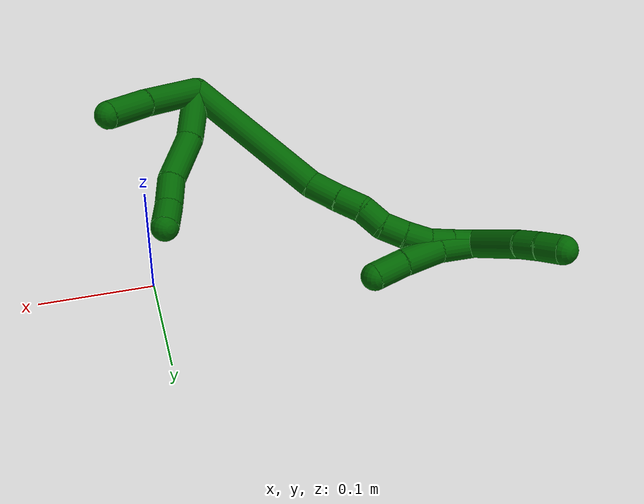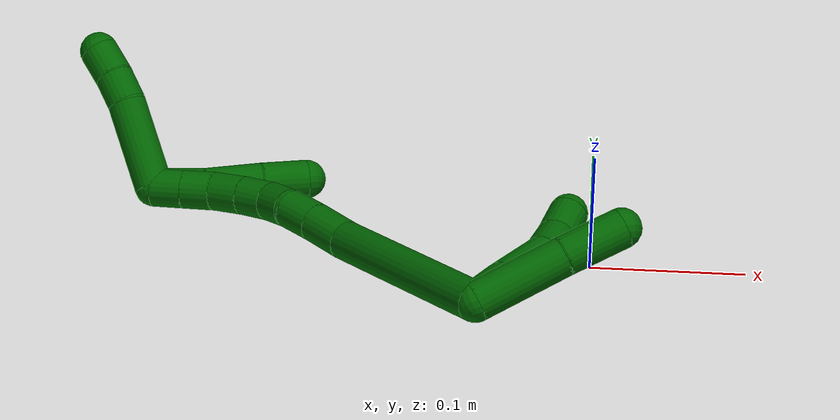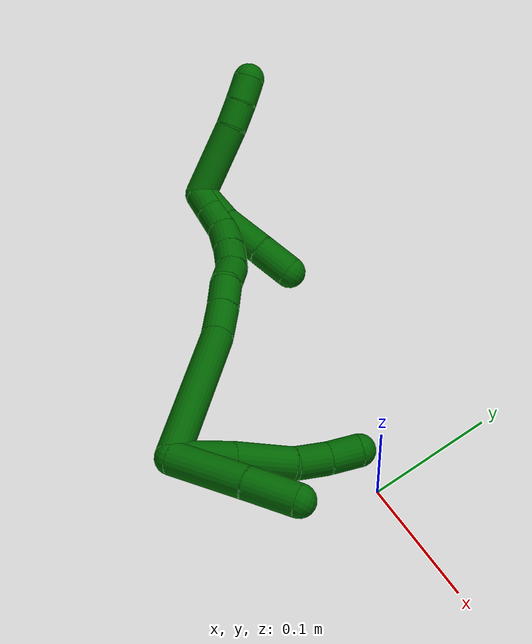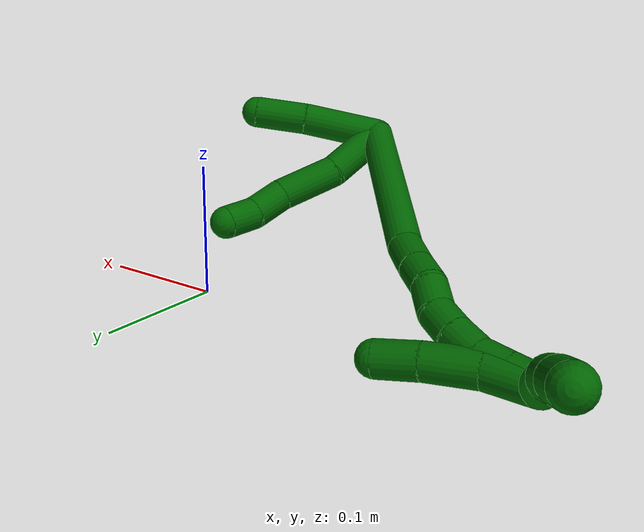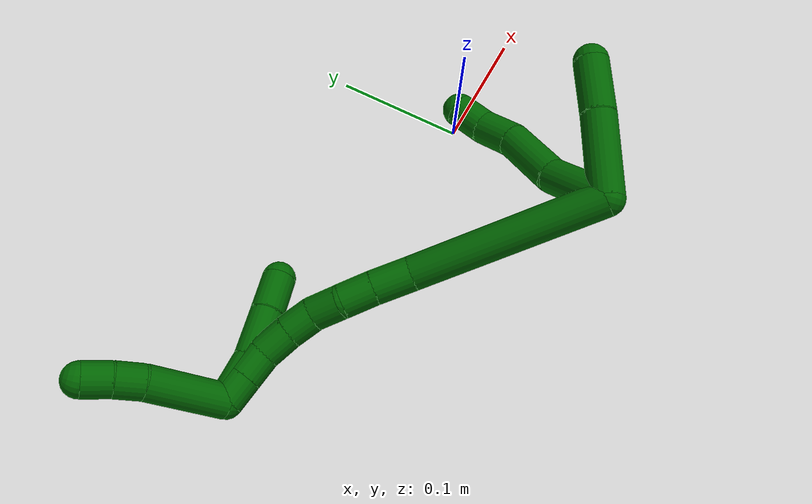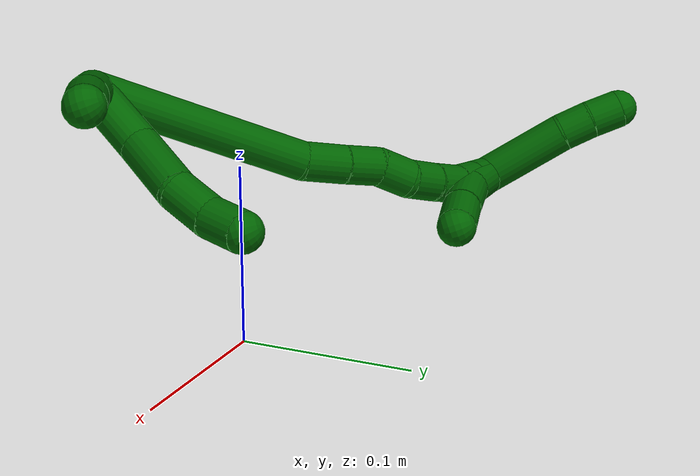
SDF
<sdf version="1.7">
 <world name="default">
  <model name="6">
   <static>0</static>
   <link name="6">
    <collision name="collision-cylinder-e_1_2_8">
     <pose>0.017528 0.01413 0.010298 -0.94099 0.786639 -0.415965</pose>
     <geometry><cylinder><radius>0.0125</radius><length>0.049516</length></cylinder></geometry>
     <surface>
      <friction><ode><mu>1.16</mu><mu2>1.16</mu2><slip1>0</slip1><slip2>0</slip2></ode></friction>
      <contact><ode><kp>1e+06</kp><kd>1</kd><max_vel>0</max_vel><min_depth>0.001</min_depth></ode></contact>
     </surface>
    </collision>
    <visual name="visual-cylinder-e_1_2_8">
     <pose>0.017528 0.01413 0.010298 -0.94099 0.786639 -0.415965</pose>
     <geometry><cylinder><radius>0.0125</radius><length>0.049516</length></cylinder></geometry>
     <material><ambient>0 0.392157 0.003922 1</ambient></material>
    </visual>
    <collision name="collision-cylinder-e_2_8_9">
     <pose>0.055243 0.036306 0.030016 -0.706912 1.0204 -0.407222</pose>
     <geometry><cylinder><radius>0.0125</radius><length>0.047367</length></cylinder></geometry>
     <surface>
      <friction><ode><mu>1.16</mu><mu2>1.16</mu2><slip1>0</slip1><slip2>0</slip2></ode></friction>
      <contact><ode><kp>1e+06</kp><kd>1</kd><max_vel>0</max_vel><min_depth>0.001</min_depth></ode></contact>
     </surface>
    </collision>
    <visual name="visual-cylinder-e_2_8_9">
     <pose>0.055243 0.036306 0.030016 -0.706912 1.0204 -0.407222</pose>
     <geometry><cylinder><radius>0.0125</radius><length>0.047367</length></cylinder></geometry>
     <material><ambient>0 0.392157 0.003922 1</ambient></material>
    </visual>
    <collision name="collision-cylinder-e_3_9_10">
     <pose>0.084985 0.05113 0.047227 -0.715904 0.746595 -0.290945</pose>
     <geometry><cylinder><radius>0.0125</radius><length>0.028144</length></cylinder></geometry>
     <surface>
      <friction><ode><mu>1.16</mu><mu2>1.16</mu2><slip1>0</slip1><slip2>0</slip2></ode></friction>
      <contact><ode><kp>1e+06</kp><kd>1</kd><max_vel>0</max_vel><min_depth>0.001</min_depth></ode></contact>
     </surface>
    </collision>
    <visual name="visual-cylinder-e_3_9_10">
     <pose>0.084985 0.05113 0.047227 -0.715904 0.746595 -0.290945</pose>
     <geometry><cylinder><radius>0.0125</radius><length>0.028144</length></cylinder></geometry>
     <material><ambient>0 0.392157 0.003922 1</ambient></material>
    </visual>
    <collision name="collision-cylinder-e_4_10_6">
     <pose>0.103156 0.061098 0.063479 -0.360558 0.761278 -0.145605</pose>
     <geometry><cylinder><radius>0.0125</radius><length>0.024973</length></cylinder></geometry>
     <surface>
      <friction><ode><mu>1.16</mu><mu2>1.16</mu2><slip1>0</slip1><slip2>0</slip2></ode></friction>
      <contact><ode><kp>1e+06</kp><kd>1</kd><max_vel>0</max_vel><min_depth>0.001</min_depth></ode></contact>
     </surface>
    </collision>
    <visual name="visual-cylinder-e_4_10_6">
     <pose>0.103156 0.061098 0.063479 -0.360558 0.761278 -0.145605</pose>
     <geometry><cylinder><radius>0.0125</radius><length>0.024973</length></cylinder></geometry>
     <material><ambient>0 0.392157 0.003922 1</ambient></material>
    </visual>
    <collision name="collision-cylinder-e_1_2_11">
     <pose>0.027611 -0.009636 0.005438 1.05697 1.18966 0.752451</pose>
     <geometry><cylinder><radius>0.0125</radius><length>0.059492</length></cylinder></geometry>
     <surface>
      <friction><ode><mu>1.16</mu><mu2>1.16</mu2><slip1>0</slip1><slip2>0</slip2></ode></friction>
      <contact><ode><kp>1e+06</kp><kd>1</kd><max_vel>0</max_vel><min_depth>0.001</min_depth></ode></contact>
     </surface>
    </collision>
    <visual name="visual-cylinder-e_1_2_11">
     <pose>0.027611 -0.009636 0.005438 1.05697 1.18966 0.752451</pose>
     <geometry><cylinder><radius>0.0125</radius><length>0.059492</length></cylinder></geometry>
     <material><ambient>0 0.392157 0.003922 1</ambient></material>
    </visual>
    <collision name="collision-cylinder-e_2_11_5">
     <pose>0.074485 -0.024408 0.014459 0.961842 1.25647 0.724598</pose>
     <geometry><cylinder><radius>0.0125</radius><length>0.040508</length></cylinder></geometry>
     <surface>
      <friction><ode><mu>1.16</mu><mu2>1.16</mu2><slip1>0</slip1><slip2>0</slip2></ode></friction>
      <contact><ode><kp>1e+06</kp><kd>1</kd><max_vel>0</max_vel><min_depth>0.001</min_depth></ode></contact>
     </surface>
    </collision>
    <visual name="visual-cylinder-e_2_11_5">
     <pose>0.074485 -0.024408 0.014459 0.961842 1.25647 0.724598</pose>
     <geometry><cylinder><radius>0.0125</radius><length>0.040508</length></cylinder></geometry>
     <material><ambient>0 0.392157 0.003922 1</ambient></material>
    </visual>
    <collision name="collision-cylinder-e_1_2_12">
     <pose>-0.011569 0.049862 0.047185 -0.812973 -0.166953 0.072003</pose>
     <geometry><cylinder><radius>0.0125</radius><length>0.139233</length></cylinder></geometry>
     <surface>
      <friction><ode><mu>1.16</mu><mu2>1.16</mu2><slip1>0</slip1><slip2>0</slip2></ode></friction>
      <contact><ode><kp>1e+06</kp><kd>1</kd><max_vel>0</max_vel><min_depth>0.001</min_depth></ode></contact>
     </surface>
    </collision>
    <visual name="visual-cylinder-e_1_2_12">
     <pose>-0.011569 0.049862 0.047185 -0.812973 -0.166953 0.072003</pose>
     <geometry><cylinder><radius>0.0125</radius><length>0.139233</length></cylinder></geometry>
     <material><ambient>0 0.392157 0.003922 1</ambient></material>
    </visual>
    <collision name="collision-cylinder-e_2_12_13">
     <pose>-0.027416 0.107768 0.105492 -0.626203 -0.302137 0.098488</pose>
     <geometry><cylinder><radius>0.0125</radius><length>0.028754</length></cylinder></geometry>
     <surface>
      <friction><ode><mu>1.16</mu><mu2>1.16</mu2><slip1>0</slip1><slip2>0</slip2></ode></friction>
      <contact><ode><kp>1e+06</kp><kd>1</kd><max_vel>0</max_vel><min_depth>0.001</min_depth></ode></contact>
     </surface>
    </collision>
    <visual name="visual-cylinder-e_2_12_13">
     <pose>-0.027416 0.107768 0.105492 -0.626203 -0.302137 0.098488</pose>
     <geometry><cylinder><radius>0.0125</radius><length>0.028754</length></cylinder></geometry>
     <material><ambient>0 0.392157 0.003922 1</ambient></material>
    </visual>
    <collision name="collision-cylinder-e_3_13_14">
     <pose>-0.035852 0.122411 0.125684 -0.628894 -0.355005 0.116557</pose>
     <geometry><cylinder><radius>0.0125</radius><length>0.023925</length></cylinder></geometry>
     <surface>
      <friction><ode><mu>1.16</mu><mu2>1.16</mu2><slip1>0</slip1><slip2>0</slip2></ode></friction>
      <contact><ode><kp>1e+06</kp><kd>1</kd><max_vel>0</max_vel><min_depth>0.001</min_depth></ode></contact>
     </surface>
    </collision>
    <visual name="visual-cylinder-e_3_13_14">
     <pose>-0.035852 0.122411 0.125684 -0.628894 -0.355005 0.116557</pose>
     <geometry><cylinder><radius>0.0125</radius><length>0.023925</length></cylinder></geometry>
     <material><ambient>0 0.392157 0.003922 1</ambient></material>
    </visual>
    <collision name="collision-cylinder-e_4_14_15">
     <pose>-0.041914 0.137564 0.141916 -0.873881 -0.169066 0.079109</pose>
     <geometry><cylinder><radius>0.0125</radius><length>0.022637</length></cylinder></geometry>
     <surface>
      <friction><ode><mu>1.16</mu><mu2>1.16</mu2><slip1>0</slip1><slip2>0</slip2></ode></friction>
      <contact><ode><kp>1e+06</kp><kd>1</kd><max_vel>0</max_vel><min_depth>0.001</min_depth></ode></contact>
     </surface>
    </collision>
    <visual name="visual-cylinder-e_4_14_15">
     <pose>-0.041914 0.137564 0.141916 -0.873881 -0.169066 0.079109</pose>
     <geometry><cylinder><radius>0.0125</radius><length>0.022637</length></cylinder></geometry>
     <material><ambient>0 0.392157 0.003922 1</ambient></material>
    </visual>
    <collision name="collision-cylinder-e_5_15_16">
     <pose>-0.049047 0.152919 0.155545 -0.810332 -0.508286 0.221905</pose>
     <geometry><cylinder><radius>0.0125</radius><length>0.021484</length></cylinder></geometry>
     <surface>
      <friction><ode><mu>1.16</mu><mu2>1.16</mu2><slip1>0</slip1><slip2>0</slip2></ode></friction>
      <contact><ode><kp>1e+06</kp><kd>1</kd><max_vel>0</max_vel><min_depth>0.001</min_depth></ode></contact>
     </surface>
    </collision>
    <visual name="visual-cylinder-e_5_15_16">
     <pose>-0.049047 0.152919 0.155545 -0.810332 -0.508286 0.221905</pose>
     <geometry><cylinder><radius>0.0125</radius><length>0.021484</length></cylinder></geometry>
     <material><ambient>0 0.392157 0.003922 1</ambient></material>
    </visual>
    <collision name="collision-cylinder-e_6_16_17">
     <pose>-0.060836 0.166648 0.168344 -0.830605 -0.61003 0.275894</pose>
     <geometry><cylinder><radius>0.0125</radius><length>0.022904</length></cylinder></geometry>
     <surface>
      <friction><ode><mu>1.16</mu><mu2>1.16</mu2><slip1>0</slip1><slip2>0</slip2></ode></friction>
      <contact><ode><kp>1e+06</kp><kd>1</kd><max_vel>0</max_vel><min_depth>0.001</min_depth></ode></contact>
     </surface>
    </collision>
    <visual name="visual-cylinder-e_6_16_17">
     <pose>-0.060836 0.166648 0.168344 -0.830605 -0.61003 0.275894</pose>
     <geometry><cylinder><radius>0.0125</radius><length>0.022904</length></cylinder></geometry>
     <material><ambient>0 0.392157 0.003922 1</ambient></material>
    </visual>
    <collision name="collision-cylinder-e_7_17_18">
     <pose>-0.07546 0.178241 0.179163 -0.804341 -0.894457 0.402511</pose>
     <geometry><cylinder><radius>0.0125</radius><length>0.020678</length></cylinder></geometry>
     <surface>
      <friction><ode><mu>1.16</mu><mu2>1.16</mu2><slip1>0</slip1><slip2>0</slip2></ode></friction>
      <contact><ode><kp>1e+06</kp><kd>1</kd><max_vel>0</max_vel><min_depth>0.001</min_depth></ode></contact>
     </surface>
    </collision>
    <visual name="visual-cylinder-e_7_17_18">
     <pose>-0.07546 0.178241 0.179163 -0.804341 -0.894457 0.402511</pose>
     <geometry><cylinder><radius>0.0125</radius><length>0.020678</length></cylinder></geometry>
     <material><ambient>0 0.392157 0.003922 1</ambient></material>
    </visual>
    <collision name="collision-cylinder-e_8_18_1">
     <pose>-0.091525 0.187414 0.188067 -0.796087 -0.902884 0.402223</pose>
     <geometry><cylinder><radius>0.0125</radius><length>0.020384</length></cylinder></geometry>
     <surface>
      <friction><ode><mu>1.16</mu><mu2>1.16</mu2><slip1>0</slip1><slip2>0</slip2></ode></friction>
      <contact><ode><kp>1e+06</kp><kd>1</kd><max_vel>0</max_vel><min_depth>0.001</min_depth></ode></contact>
     </surface>
    </collision>
    <visual name="visual-cylinder-e_8_18_1">
     <pose>-0.091525 0.187414 0.188067 -0.796087 -0.902884 0.402223</pose>
     <geometry><cylinder><radius>0.0125</radius><length>0.020384</length></cylinder></geometry>
     <material><ambient>0 0.392157 0.003922 1</ambient></material>
    </visual>
    <collision name="collision-cylinder-e_1_1_19">
     <pose>-0.084768 0.186368 0.186988 2.35055 1.08385 1.92889</pose>
     <geometry><cylinder><radius>0.0125</radius><length>0.033399</length></cylinder></geometry>
     <surface>
      <friction><ode><mu>1.16</mu><mu2>1.16</mu2><slip1>0</slip1><slip2>0</slip2></ode></friction>
      <contact><ode><kp>1e+06</kp><kd>1</kd><max_vel>0</max_vel><min_depth>0.001</min_depth></ode></contact>
     </surface>
    </collision>
    <visual name="visual-cylinder-e_1_1_19">
     <pose>-0.084768 0.186368 0.186988 2.35055 1.08385 1.92889</pose>
     <geometry><cylinder><radius>0.0125</radius><length>0.033399</length></cylinder></geometry>
     <material><ambient>0 0.392157 0.003922 1</ambient></material>
    </visual>
    <collision name="collision-cylinder-e_2_19_20">
     <pose>-0.052082 0.177082 0.178511 2.24539 1.31043 2.0236</pose>
     <geometry><cylinder><radius>0.0125</radius><length>0.037104</length></cylinder></geometry>
     <surface>
      <friction><ode><mu>1.16</mu><mu2>1.16</mu2><slip1>0</slip1><slip2>0</slip2></ode></friction>
      <contact><ode><kp>1e+06</kp><kd>1</kd><max_vel>0</max_vel><min_depth>0.001</min_depth></ode></contact>
     </surface>
    </collision>
    <visual name="visual-cylinder-e_2_19_20">
     <pose>-0.052082 0.177082 0.178511 2.24539 1.31043 2.0236</pose>
     <geometry><cylinder><radius>0.0125</radius><length>0.037104</length></cylinder></geometry>
     <material><ambient>0 0.392157 0.003922 1</ambient></material>
    </visual>
    <collision name="collision-cylinder-e_3_20_4">
     <pose>-0.019717 0.171513 0.173148 2.48398 1.36542 2.34703</pose>
     <geometry><cylinder><radius>0.0125</radius><length>0.029496</length></cylinder></geometry>
     <surface>
      <friction><ode><mu>1.16</mu><mu2>1.16</mu2><slip1>0</slip1><slip2>0</slip2></ode></friction>
      <contact><ode><kp>1e+06</kp><kd>1</kd><max_vel>0</max_vel><min_depth>0.001</min_depth></ode></contact>
     </surface>
    </collision>
    <visual name="visual-cylinder-e_3_20_4">
     <pose>-0.019717 0.171513 0.173148 2.48398 1.36542 2.34703</pose>
     <geometry><cylinder><radius>0.0125</radius><length>0.029496</length></cylinder></geometry>
     <material><ambient>0 0.392157 0.003922 1</ambient></material>
    </visual>
    <collision name="collision-cylinder-e_1_1_21">
     <pose>-0.101631 0.186795 0.2213 0.176142 -0.071775 -0.00634</pose>
     <geometry><cylinder><radius>0.0125</radius><length>0.058691</length></cylinder></geometry>
     <surface>
      <friction><ode><mu>1.16</mu><mu2>1.16</mu2><slip1>0</slip1><slip2>0</slip2></ode></friction>
      <contact><ode><kp>1e+06</kp><kd>1</kd><max_vel>0</max_vel><min_depth>0.001</min_depth></ode></contact>
     </surface>
    </collision>
    <visual name="visual-cylinder-e_1_1_21">
     <pose>-0.101631 0.186795 0.2213 0.176142 -0.071775 -0.00634</pose>
     <geometry><cylinder><radius>0.0125</radius><length>0.058691</length></cylinder></geometry>
     <material><ambient>0 0.392157 0.003922 1</ambient></material>
    </visual>
    <collision name="collision-cylinder-e_2_21_22">
     <pose>-0.105292 0.181324 0.260278 0.033648 -0.151872 -0.00256</pose>
     <geometry><cylinder><radius>0.0125</radius><length>0.020571</length></cylinder></geometry>
     <surface>
      <friction><ode><mu>1.16</mu><mu2>1.16</mu2><slip1>0</slip1><slip2>0</slip2></ode></friction>
      <contact><ode><kp>1e+06</kp><kd>1</kd><max_vel>0</max_vel><min_depth>0.001</min_depth></ode></contact>
     </surface>
    </collision>
    <visual name="visual-cylinder-e_2_21_22">
     <pose>-0.105292 0.181324 0.260278 0.033648 -0.151872 -0.00256</pose>
     <geometry><cylinder><radius>0.0125</radius><length>0.020571</length></cylinder></geometry>
     <material><ambient>0 0.392157 0.003922 1</ambient></material>
    </visual>
    <collision name="collision-cylinder-e_3_22_3">
     <pose>-0.108948 0.181639 0.280572 -0.064696 -0.204002 0.006624</pose>
     <geometry><cylinder><radius>0.0125</radius><length>0.020738</length></cylinder></geometry>
     <surface>
      <friction><ode><mu>1.16</mu><mu2>1.16</mu2><slip1>0</slip1><slip2>0</slip2></ode></friction>
      <contact><ode><kp>1e+06</kp><kd>1</kd><max_vel>0</max_vel><min_depth>0.001</min_depth></ode></contact>
     </surface>
    </collision>
    <visual name="visual-cylinder-e_3_22_3">
     <pose>-0.108948 0.181639 0.280572 -0.064696 -0.204002 0.006624</pose>
     <geometry><cylinder><radius>0.0125</radius><length>0.020738</length></cylinder></geometry>
     <material><ambient>0 0.392157 0.003922 1</ambient></material>
    </visual>
    <collision name="collision-sphere-3">
     <pose>-0.111049 0.182295 0.290705 0 -0 0</pose>
     <geometry><sphere><radius>0.0125</radius></sphere></geometry>
     <surface>
      <friction><ode><mu>1.16</mu><mu2>1.16</mu2><slip1>0</slip1><slip2>0</slip2></ode></friction>
      <contact><ode><kp>1e+06</kp><kd>1</kd><max_vel>0</max_vel><min_depth>0.001</min_depth></ode></contact>
     </surface>
    </collision>
    <visual name="visual-sphere-3">
     <pose>-0.111049 0.182295 0.290705 0 -0 0</pose>
     <geometry><sphere><radius>0.0125</radius></sphere></geometry>
     <material><ambient>0 0.392157 0.003922 1</ambient></material>
    </visual>
    <collision name="collision-sphere-22">
     <pose>-0.106848 0.180982 0.270439 0 -0 0</pose>
     <geometry><sphere><radius>0.0125</radius></sphere></geometry>
     <surface>
      <friction><ode><mu>1.16</mu><mu2>1.16</mu2><slip1>0</slip1><slip2>0</slip2></ode></friction>
      <contact><ode><kp>1e+06</kp><kd>1</kd><max_vel>0</max_vel><min_depth>0.001</min_depth></ode></contact>
     </surface>
    </collision>
    <visual name="visual-sphere-22">
     <pose>-0.106848 0.180982 0.270439 0 -0 0</pose>
     <geometry><sphere><radius>0.0125</radius></sphere></geometry>
     <material><ambient>0 0.392157 0.003922 1</ambient></material>
    </visual>
    <collision name="collision-sphere-21">
     <pose>-0.103736 0.181666 0.250117 0 -0 0</pose>
     <geometry><sphere><radius>0.0125</radius></sphere></geometry>
     <surface>
      <friction><ode><mu>1.16</mu><mu2>1.16</mu2><slip1>0</slip1><slip2>0</slip2></ode></friction>
      <contact><ode><kp>1e+06</kp><kd>1</kd><max_vel>0</max_vel><min_depth>0.001</min_depth></ode></contact>
     </surface>
    </collision>
    <visual name="visual-sphere-21">
     <pose>-0.103736 0.181666 0.250117 0 -0 0</pose>
     <geometry><sphere><radius>0.0125</radius></sphere></geometry>
     <material><ambient>0 0.392157 0.003922 1</ambient></material>
    </visual>
    <collision name="collision-sphere-4">
     <pose>-0.005279 0.169675 0.170767 0 -0 0</pose>
     <geometry><sphere><radius>0.0125</radius></sphere></geometry>
     <surface>
      <friction><ode><mu>1.16</mu><mu2>1.16</mu2><slip1>0</slip1><slip2>0</slip2></ode></friction>
      <contact><ode><kp>1e+06</kp><kd>1</kd><max_vel>0</max_vel><min_depth>0.001</min_depth></ode></contact>
     </surface>
    </collision>
    <visual name="visual-sphere-4">
     <pose>-0.005279 0.169675 0.170767 0 -0 0</pose>
     <geometry><sphere><radius>0.0125</radius></sphere></geometry>
     <material><ambient>0 0.392157 0.003922 1</ambient></material>
    </visual>
    <collision name="collision-sphere-20">
     <pose>-0.034156 0.173352 0.175528 0 -0 0</pose>
     <geometry><sphere><radius>0.0125</radius></sphere></geometry>
     <surface>
      <friction><ode><mu>1.16</mu><mu2>1.16</mu2><slip1>0</slip1><slip2>0</slip2></ode></friction>
      <contact><ode><kp>1e+06</kp><kd>1</kd><max_vel>0</max_vel><min_depth>0.001</min_depth></ode></contact>
     </surface>
    </collision>
    <visual name="visual-sphere-20">
     <pose>-0.034156 0.173352 0.175528 0 -0 0</pose>
     <geometry><sphere><radius>0.0125</radius></sphere></geometry>
     <material><ambient>0 0.392157 0.003922 1</ambient></material>
    </visual>
    <collision name="collision-sphere-11">
     <pose>0.055223 -0.019272 0.010877 0 -0 0</pose>
     <geometry><sphere><radius>0.0125</radius></sphere></geometry>
     <surface>
      <friction><ode><mu>1.16</mu><mu2>1.16</mu2><slip1>0</slip1><slip2>0</slip2></ode></friction>
      <contact><ode><kp>1e+06</kp><kd>1</kd><max_vel>0</max_vel><min_depth>0.001</min_depth></ode></contact>
     </surface>
    </collision>
    <visual name="visual-sphere-11">
     <pose>0.055223 -0.019272 0.010877 0 -0 0</pose>
     <geometry><sphere><radius>0.0125</radius></sphere></geometry>
     <material><ambient>0 0.392157 0.003922 1</ambient></material>
    </visual>
    <collision name="collision-sphere-6">
     <pose>0.11177 0.064287 0.071937 0 -0 0</pose>
     <geometry><sphere><radius>0.0125</radius></sphere></geometry>
     <surface>
      <friction><ode><mu>1.16</mu><mu2>1.16</mu2><slip1>0</slip1><slip2>0</slip2></ode></friction>
      <contact><ode><kp>1e+06</kp><kd>1</kd><max_vel>0</max_vel><min_depth>0.001</min_depth></ode></contact>
     </surface>
    </collision>
    <visual name="visual-sphere-6">
     <pose>0.11177 0.064287 0.071937 0 -0 0</pose>
     <geometry><sphere><radius>0.0125</radius></sphere></geometry>
     <material><ambient>0 0.392157 0.003922 1</ambient></material>
    </visual>
    <collision name="collision-sphere-10">
     <pose>0.094542 0.057909 0.055021 0 -0 0</pose>
     <geometry><sphere><radius>0.0125</radius></sphere></geometry>
     <surface>
      <friction><ode><mu>1.16</mu><mu2>1.16</mu2><slip1>0</slip1><slip2>0</slip2></ode></friction>
      <contact><ode><kp>1e+06</kp><kd>1</kd><max_vel>0</max_vel><min_depth>0.001</min_depth></ode></contact>
     </surface>
    </collision>
    <visual name="visual-sphere-10">
     <pose>0.094542 0.057909 0.055021 0 -0 0</pose>
     <geometry><sphere><radius>0.0125</radius></sphere></geometry>
     <material><ambient>0 0.392157 0.003922 1</ambient></material>
    </visual>
    <collision name="collision-sphere-9">
     <pose>0.075428 0.044351 0.039434 0 -0 0</pose>
     <geometry><sphere><radius>0.0125</radius></sphere></geometry>
     <surface>
      <friction><ode><mu>1.16</mu><mu2>1.16</mu2><slip1>0</slip1><slip2>0</slip2></ode></friction>
      <contact><ode><kp>1e+06</kp><kd>1</kd><max_vel>0</max_vel><min_depth>0.001</min_depth></ode></contact>
     </surface>
    </collision>
    <visual name="visual-sphere-9">
     <pose>0.075428 0.044351 0.039434 0 -0 0</pose>
     <geometry><sphere><radius>0.0125</radius></sphere></geometry>
     <material><ambient>0 0.392157 0.003922 1</ambient></material>
    </visual>
    <collision name="collision-sphere-2">
     <geometry><sphere><radius>0.0125</radius></sphere></geometry>
     <surface>
      <friction><ode><mu>1.16</mu><mu2>1.16</mu2><slip1>0</slip1><slip2>0</slip2></ode></friction>
      <contact><ode><kp>1e+06</kp><kd>1</kd><max_vel>0</max_vel><min_depth>0.001</min_depth></ode></contact>
     </surface>
    </collision>
    <visual name="visual-sphere-2">
     <geometry><sphere><radius>0.0125</radius></sphere></geometry>
     <material><ambient>0 0.392157 0.003922 1</ambient></material>
    </visual>
    <collision name="collision-sphere-19">
     <pose>-0.070009 0.180811 0.181494 0 -0 0</pose>
     <geometry><sphere><radius>0.0125</radius></sphere></geometry>
     <surface>
      <friction><ode><mu>1.16</mu><mu2>1.16</mu2><slip1>0</slip1><slip2>0</slip2></ode></friction>
      <contact><ode><kp>1e+06</kp><kd>1</kd><max_vel>0</max_vel><min_depth>0.001</min_depth></ode></contact>
     </surface>
    </collision>
    <visual name="visual-sphere-19">
     <pose>-0.070009 0.180811 0.181494 0 -0 0</pose>
     <geometry><sphere><radius>0.0125</radius></sphere></geometry>
     <material><ambient>0 0.392157 0.003922 1</ambient></material>
    </visual>
    <collision name="collision-sphere-8">
     <pose>0.035057 0.028261 0.020597 0 -0 0</pose>
     <geometry><sphere><radius>0.0125</radius></sphere></geometry>
     <surface>
      <friction><ode><mu>1.16</mu><mu2>1.16</mu2><slip1>0</slip1><slip2>0</slip2></ode></friction>
      <contact><ode><kp>1e+06</kp><kd>1</kd><max_vel>0</max_vel><min_depth>0.001</min_depth></ode></contact>
     </surface>
    </collision>
    <visual name="visual-sphere-8">
     <pose>0.035057 0.028261 0.020597 0 -0 0</pose>
     <geometry><sphere><radius>0.0125</radius></sphere></geometry>
     <material><ambient>0 0.392157 0.003922 1</ambient></material>
    </visual>
    <collision name="collision-sphere-5">
     <pose>0.093746 -0.029545 0.018041 0 -0 0</pose>
     <geometry><sphere><radius>0.0125</radius></sphere></geometry>
     <surface>
      <friction><ode><mu>1.16</mu><mu2>1.16</mu2><slip1>0</slip1><slip2>0</slip2></ode></friction>
      <contact><ode><kp>1e+06</kp><kd>1</kd><max_vel>0</max_vel><min_depth>0.001</min_depth></ode></contact>
     </surface>
    </collision>
    <visual name="visual-sphere-5">
     <pose>0.093746 -0.029545 0.018041 0 -0 0</pose>
     <geometry><sphere><radius>0.0125</radius></sphere></geometry>
     <material><ambient>0 0.392157 0.003922 1</ambient></material>
    </visual>
    <collision name="collision-sphere-12">
     <pose>-0.023138 0.099724 0.09437 0 -0 0</pose>
     <geometry><sphere><radius>0.0125</radius></sphere></geometry>
     <surface>
      <friction><ode><mu>1.16</mu><mu2>1.16</mu2><slip1>0</slip1><slip2>0</slip2></ode></friction>
      <contact><ode><kp>1e+06</kp><kd>1</kd><max_vel>0</max_vel><min_depth>0.001</min_depth></ode></contact>
     </surface>
    </collision>
    <visual name="visual-sphere-12">
     <pose>-0.023138 0.099724 0.09437 0 -0 0</pose>
     <geometry><sphere><radius>0.0125</radius></sphere></geometry>
     <material><ambient>0 0.392157 0.003922 1</ambient></material>
    </visual>
    <collision name="collision-sphere-13">
     <pose>-0.031694 0.115812 0.116613 0 -0 0</pose>
     <geometry><sphere><radius>0.0125</radius></sphere></geometry>
     <surface>
      <friction><ode><mu>1.16</mu><mu2>1.16</mu2><slip1>0</slip1><slip2>0</slip2></ode></friction>
      <contact><ode><kp>1e+06</kp><kd>1</kd><max_vel>0</max_vel><min_depth>0.001</min_depth></ode></contact>
     </surface>
    </collision>
    <visual name="visual-sphere-13">
     <pose>-0.031694 0.115812 0.116613 0 -0 0</pose>
     <geometry><sphere><radius>0.0125</radius></sphere></geometry>
     <material><ambient>0 0.392157 0.003922 1</ambient></material>
    </visual>
    <collision name="collision-sphere-14">
     <pose>-0.04001 0.129009 0.134754 0 -0 0</pose>
     <geometry><sphere><radius>0.0125</radius></sphere></geometry>
     <surface>
      <friction><ode><mu>1.16</mu><mu2>1.16</mu2><slip1>0</slip1><slip2>0</slip2></ode></friction>
      <contact><ode><kp>1e+06</kp><kd>1</kd><max_vel>0</max_vel><min_depth>0.001</min_depth></ode></contact>
     </surface>
    </collision>
    <visual name="visual-sphere-14">
     <pose>-0.04001 0.129009 0.134754 0 -0 0</pose>
     <geometry><sphere><radius>0.0125</radius></sphere></geometry>
     <material><ambient>0 0.392157 0.003922 1</ambient></material>
    </visual>
    <collision name="collision-sphere-15">
     <pose>-0.043819 0.14612 0.149077 0 -0 0</pose>
     <geometry><sphere><radius>0.0125</radius></sphere></geometry>
     <surface>
      <friction><ode><mu>1.16</mu><mu2>1.16</mu2><slip1>0</slip1><slip2>0</slip2></ode></friction>
      <contact><ode><kp>1e+06</kp><kd>1</kd><max_vel>0</max_vel><min_depth>0.001</min_depth></ode></contact>
     </surface>
    </collision>
    <visual name="visual-sphere-15">
     <pose>-0.043819 0.14612 0.149077 0 -0 0</pose>
     <geometry><sphere><radius>0.0125</radius></sphere></geometry>
     <material><ambient>0 0.392157 0.003922 1</ambient></material>
    </visual>
    <collision name="collision-sphere-16">
     <pose>-0.054275 0.159718 0.162013 0 -0 0</pose>
     <geometry><sphere><radius>0.0125</radius></sphere></geometry>
     <surface>
      <friction><ode><mu>1.16</mu><mu2>1.16</mu2><slip1>0</slip1><slip2>0</slip2></ode></friction>
      <contact><ode><kp>1e+06</kp><kd>1</kd><max_vel>0</max_vel><min_depth>0.001</min_depth></ode></contact>
     </surface>
    </collision>
    <visual name="visual-sphere-16">
     <pose>-0.054275 0.159718 0.162013 0 -0 0</pose>
     <geometry><sphere><radius>0.0125</radius></sphere></geometry>
     <material><ambient>0 0.392157 0.003922 1</ambient></material>
    </visual>
    <collision name="collision-sphere-17">
     <pose>-0.067397 0.173579 0.174674 0 -0 0</pose>
     <geometry><sphere><radius>0.0125</radius></sphere></geometry>
     <surface>
      <friction><ode><mu>1.16</mu><mu2>1.16</mu2><slip1>0</slip1><slip2>0</slip2></ode></friction>
      <contact><ode><kp>1e+06</kp><kd>1</kd><max_vel>0</max_vel><min_depth>0.001</min_depth></ode></contact>
     </surface>
    </collision>
    <visual name="visual-sphere-17">
     <pose>-0.067397 0.173579 0.174674 0 -0 0</pose>
     <geometry><sphere><radius>0.0125</radius></sphere></geometry>
     <material><ambient>0 0.392157 0.003922 1</ambient></material>
    </visual>
    <collision name="collision-sphere-18">
     <pose>-0.083523 0.182903 0.183651 0 -0 0</pose>
     <geometry><sphere><radius>0.0125</radius></sphere></geometry>
     <surface>
      <friction><ode><mu>1.16</mu><mu2>1.16</mu2><slip1>0</slip1><slip2>0</slip2></ode></friction>
      <contact><ode><kp>1e+06</kp><kd>1</kd><max_vel>0</max_vel><min_depth>0.001</min_depth></ode></contact>
     </surface>
    </collision>
    <visual name="visual-sphere-18">
     <pose>-0.083523 0.182903 0.183651 0 -0 0</pose>
     <geometry><sphere><radius>0.0125</radius></sphere></geometry>
     <material><ambient>0 0.392157 0.003922 1</ambient></material>
    </visual>
    <collision name="collision-sphere-1">
     <pose>-0.099527 0.191925 0.192483 0 -0 0</pose>
     <geometry><sphere><radius>0.0125</radius></sphere></geometry>
     <surface>
      <friction><ode><mu>1.16</mu><mu2>1.16</mu2><slip1>0</slip1><slip2>0</slip2></ode></friction>
      <contact><ode><kp>1e+06</kp><kd>1</kd><max_vel>0</max_vel><min_depth>0.001</min_depth></ode></contact>
     </surface>
    </collision>
    <visual name="visual-sphere-1">
     <pose>-0.099527 0.191925 0.192483 0 -0 0</pose>
     <geometry><sphere><radius>0.0125</radius></sphere></geometry>
     <material><ambient>0 0.392157 0.003922 1</ambient></material>
    </visual>
    <inertial>
     <pose>-0.016936 0.094438 0.104601 0 -0 0</pose>
     <mass>0.75</mass>
     <inertia>
      <ixx>0.000319</ixx>
      <ixy>0</ixy>
      <ixz>0</ixz>
      <iyy>0.000291</iyy>
      <iyz>0</iyz>
      <izz>-0.000155</izz>
     </inertia>
    </inertial>
   </link>
   <pose>-0.067657 -0.134174 0.111772 -1.20898 0.18092 0.462006</pose>
  </model>
 </world>
</sdf>
